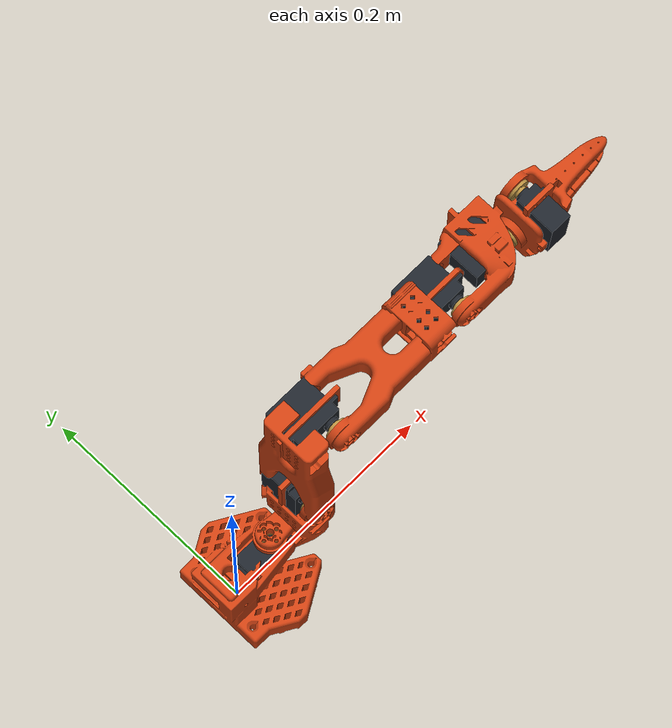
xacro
<?xml version="1.0"?>
<robot xmlns:xacro="http://www.ros.org/wiki/xacro" name="so101_mg996r_follower_r3">
  <material name="printed">
    <color rgba=".8 .25 .07 1" />
  </material>
  <material name="servo">
    <color rgba=".12 .14 .17 1" />
  </material>
  <material name="horn">
    <color rgba=".72 .56 .25 1" />
  </material>
  <link name="base_link">
    <visual name="follower_sts3215_03a_v1_2">
      <origin xyz="0.0263353 -8.97656999879322e-09 0.0437" rpy="-8.31586478561588e-44 0 -6.16297582203915e-33" />
      <geometry>
        <mesh filename="package://so101_description/meshes/visual/MG996R_Nominal_R3.stl" />
      </geometry>
      <material name="servo" />
    </visual>
    <collision name="follower_sts3215_03a_v1_2_case">
      <origin xyz="0.0283853 -8.97656999879322e-09 0.0337" rpy="-8.31586478561588e-44 0 -6.16297582203915e-33" />
      <geometry>
        <box size="0.0409 0.02 0.037" />
      </geometry>
    </collision>
    <collision name="follower_sts3215_03a_v1_2_tabs">
      <origin xyz="0.0283853 -8.97656999879322e-09 0.0433" rpy="-8.31586478561588e-44 0 -6.16297582203915e-33" />
      <geometry>
        <box size="0.054 0.02 0.0026" />
      </geometry>
    </collision>
    <collision name="follower_sts3215_03a_v1_2_boss">
      <origin xyz="0.0388353 -8.97656999879322e-09 0.0537" rpy="-8.31586478561588e-44 0 -6.16297582203915e-33" />
      <geometry>
        <cylinder radius="0.006500000000000001" length="0.003" />
      </geometry>
    </collision>
    <collision name="follower_sts3215_03a_v1_2_shaft">
      <origin xyz="0.0388353 -8.97656999879322e-09 0.05505" rpy="-8.31586478561588e-44 0 -6.16297582203915e-33" />
      <geometry>
        <cylinder radius="0.003" length="0.0057" />
      </geometry>
    </collision>
    <visual name="follower_Base_MG996R_R3">
      <origin xyz="-0.00636471 -8.97657e-09 -0.0024" rpy="1.5707963267949 6.74682532064708e-12 1.5707963267949" />
      <geometry>
        <mesh filename="package://so101_description/meshes/visual/Base_MG996R_R3.stl" />
      </geometry>
      <material name="printed" />
    </visual>
    <collision name="follower_Base_MG996R_R3_body0">
      <origin xyz="-0.00636471 -8.97657e-09 -0.0024" rpy="1.5707963267949 6.74682532064708e-12 1.5707963267949" />
      <geometry>
        <mesh filename="package://so101_description/meshes/collision/Base_MG996R_R3_body0.stl" />
      </geometry>
    </collision>
  </link>
  <link name="shoulder_link">
    <visual name="follower_sts3215_03a_v1_4">
      <origin xyz="-0.0303992 0.000422241000000002 -0.0417" rpy="1.5707963267949 1.5707963267949 0" />
      <geometry>
        <mesh filename="package://so101_description/meshes/visual/MG996R_Nominal_R3.stl" />
      </geometry>
      <material name="servo" />
    </visual>
    <collision name="follower_sts3215_03a_v1_4_case">
      <origin xyz="-0.0303992 0.010422241 -0.04375" rpy="1.5707963267949 1.5707963267949 0" />
      <geometry>
        <box size="0.0409 0.02 0.037" />
      </geometry>
    </collision>
    <collision name="follower_sts3215_03a_v1_4_tabs">
      <origin xyz="-0.0303992 0.000822241000000002 -0.04375" rpy="1.5707963267949 1.5707963267949 0" />
      <geometry>
        <box size="0.054 0.02 0.0026" />
      </geometry>
    </collision>
    <collision name="follower_sts3215_03a_v1_4_boss">
      <origin xyz="-0.0303992 -0.009577759 -0.0542" rpy="1.5707963267949 1.5707963267949 0" />
      <geometry>
        <cylinder radius="0.006500000000000001" length="0.003" />
      </geometry>
    </collision>
    <collision name="follower_sts3215_03a_v1_4_shaft">
      <origin xyz="-0.0303992 -0.010927759 -0.0542" rpy="1.5707963267949 1.5707963267949 0" />
      <geometry>
        <cylinder radius="0.003" length="0.0057" />
      </geometry>
    </collision>
    <visual name="follower_Shoulder_MG996R_R3">
      <origin xyz="0.0122008 2.22413e-05 0.0464" rpy="-1.5707963267949 0 0" />
      <geometry>
        <mesh filename="package://so101_description/meshes/visual/Shoulder_MG996R_R3.stl" />
      </geometry>
      <material name="printed" />
    </visual>
    <collision name="follower_Shoulder_MG996R_R3_body0">
      <origin xyz="0.0122008 2.22413e-05 0.0464" rpy="-1.5707963267949 0 0" />
      <geometry>
        <mesh filename="package://so101_description/meshes/collision/Shoulder_MG996R_R3_body0.stl" />
      </geometry>
    </collision>
    <visual name="follower_metal_horn_0">
      <origin xyz="0.0125 1.39964063017479e-18 0.0187" rpy="3.14159265358979 0 3.14159265358979" />
      <geometry>
        <mesh filename="package://so101_description/meshes/visual/Metal_Horn_D20_PCD14_R3.stl" />
      </geometry>
      <material name="horn" />
    </visual>
    <collision name="follower_metal_horn_0_body0">
      <origin xyz="0.0125 1.39964063017479e-18 0.0187" rpy="3.14159265358979 0 3.14159265358979" />
      <geometry>
        <mesh filename="package://so101_description/meshes/collision/Metal_Horn_D20_PCD14_R3_body0.stl" />
      </geometry>
    </collision>
  </link>
  <link name="upper_arm_link">
    <visual name="follower_sts3215_03a_v1_7">
      <origin xyz="-0.11257 -0.0155 0.0187" rpy="3.14159265358979 0 -1.5707963267949" />
      <geometry>
        <mesh filename="package://so101_description/meshes/visual/MG996R_Nominal_R3.stl" />
      </geometry>
      <material name="servo" />
    </visual>
    <collision name="follower_sts3215_03a_v1_7_case">
      <origin xyz="-0.11257 -0.01755 0.0287" rpy="3.14159265358979 0 -1.5707963267949" />
      <geometry>
        <box size="0.0409 0.02 0.037" />
      </geometry>
    </collision>
    <collision name="follower_sts3215_03a_v1_7_tabs">
      <origin xyz="-0.11257 -0.01755 0.0191" rpy="3.14159265358979 0 -1.5707963267949" />
      <geometry>
        <box size="0.054 0.02 0.0026" />
      </geometry>
    </collision>
    <collision name="follower_sts3215_03a_v1_7_boss">
      <origin xyz="-0.11257 -0.028 0.00870000000000001" rpy="3.14159265358979 0 -1.5707963267949" />
      <geometry>
        <cylinder radius="0.006500000000000001" length="0.003" />
      </geometry>
    </collision>
    <collision name="follower_sts3215_03a_v1_7_shaft">
      <origin xyz="-0.11257 -0.028 0.00735000000000001" rpy="3.14159265358979 0 -1.5707963267949" />
      <geometry>
        <cylinder radius="0.003" length="0.0057" />
      </geometry>
    </collision>
    <visual name="follower_Upper_arm_MG996R_R3">
      <origin xyz="-0.065085 0.012 0.0182" rpy="3.14159265358979 0 0" />
      <geometry>
        <mesh filename="package://so101_description/meshes/visual/Upper_arm_MG996R_R3.stl" />
      </geometry>
      <material name="printed" />
    </visual>
    <collision name="follower_Upper_arm_MG996R_R3_body0">
      <origin xyz="-0.065085 0.012 0.0182" rpy="3.14159265358979 0 0" />
      <geometry>
        <mesh filename="package://so101_description/meshes/collision/Upper_arm_MG996R_R3_body0.stl" />
      </geometry>
    </collision>
    <visual name="follower_metal_horn_1">
      <origin xyz="0.0125 2.8421709430404e-17 0.018700041" rpy="3.14159265358979 4.44089209850063e-16 3.14159265358979" />
      <geometry>
        <mesh filename="package://so101_description/meshes/visual/Metal_Horn_D20_PCD14_R3.stl" />
      </geometry>
      <material name="horn" />
    </visual>
    <collision name="follower_metal_horn_1_body0">
      <origin xyz="0.0125 2.8421709430404e-17 0.018700041" rpy="3.14159265358979 4.44089209850063e-16 3.14159265358979" />
      <geometry>
        <mesh filename="package://so101_description/meshes/collision/Metal_Horn_D20_PCD14_R3_body0.stl" />
      </geometry>
    </collision>
  </link>
  <link name="lower_arm_link">
    <visual name="follower_sts3215_03a_v1_11">
      <origin xyz="-0.1224 0.00519999999999996 0.0187" rpy="-3.14159265358979 0 -3.14159265358979" />
      <geometry>
        <mesh filename="package://so101_description/meshes/visual/MG996R_Nominal_R3.stl" />
      </geometry>
      <material name="servo" />
    </visual>
    <collision name="follower_sts3215_03a_v1_11_case">
      <origin xyz="-0.12445 0.00519999999999996 0.0287" rpy="-3.14159265358979 0 -3.14159265358979" />
      <geometry>
        <box size="0.0409 0.02 0.037" />
      </geometry>
    </collision>
    <collision name="follower_sts3215_03a_v1_11_tabs">
      <origin xyz="-0.12445 0.00519999999999996 0.0191" rpy="-3.14159265358979 0 -3.14159265358979" />
      <geometry>
        <box size="0.054 0.02 0.0026" />
      </geometry>
    </collision>
    <collision name="follower_sts3215_03a_v1_11_boss">
      <origin xyz="-0.1349 0.00519999999999996 0.0087" rpy="-3.14159265358979 0 -3.14159265358979" />
      <geometry>
        <cylinder radius="0.006500000000000001" length="0.003" />
      </geometry>
    </collision>
    <collision name="follower_sts3215_03a_v1_11_shaft">
      <origin xyz="-0.1349 0.00519999999999996 0.00735" rpy="-3.14159265358979 0 -3.14159265358979" />
      <geometry>
        <cylinder radius="0.003" length="0.0057" />
      </geometry>
    </collision>
    <visual name="follower_Forearm_MG996R_R3">
      <origin xyz="-0.0648499 -0.032 0.0182" rpy="3.14159265358979 0 0" />
      <geometry>
        <mesh filename="package://so101_description/meshes/visual/Forearm_MG996R_R3.stl" />
      </geometry>
      <material name="printed" />
    </visual>
    <collision name="follower_Forearm_MG996R_R3_body0">
      <origin xyz="-0.0648499 -0.032 0.0182" rpy="3.14159265358979 0 0" />
      <geometry>
        <mesh filename="package://so101_description/meshes/collision/Forearm_MG996R_R3_body0.stl" />
      </geometry>
    </collision>
    <collision name="follower_Forearm_MG996R_R3_body1">
      <origin xyz="-0.0648499 -0.032 0.0182" rpy="3.14159265358979 0 0" />
      <geometry>
        <mesh filename="package://so101_description/meshes/collision/Forearm_MG996R_R3_body1.stl" />
      </geometry>
    </collision>
    <collision name="follower_Forearm_MG996R_R3_body2">
      <origin xyz="-0.0648499 -0.032 0.0182" rpy="3.14159265358979 0 0" />
      <geometry>
        <mesh filename="package://so101_description/meshes/collision/Forearm_MG996R_R3_body2.stl" />
      </geometry>
    </collision>
    <visual name="follower_metal_horn_2">
      <origin xyz="0.0125 0 0.0186999999999998" rpy="-3.14159265358979 0 -3.14159265358979" />
      <geometry>
        <mesh filename="package://so101_description/meshes/visual/Metal_Horn_D20_PCD14_R3.stl" />
      </geometry>
      <material name="horn" />
    </visual>
    <collision name="follower_metal_horn_2_body0">
      <origin xyz="0.0125 0 0.0186999999999998" rpy="-3.14159265358979 0 -3.14159265358979" />
      <geometry>
        <mesh filename="package://so101_description/meshes/collision/Metal_Horn_D20_PCD14_R3_body0.stl" />
      </geometry>
    </collision>
  </link>
  <link name="wrist_link">
    <visual name="follower_sts3215_03a_no_horn_v1_12">
      <origin xyz="8.5265128291212e-17 -0.0504 0.0306" rpy="1.5707963267949 1.5707963267949 0" />
      <geometry>
        <mesh filename="package://so101_description/meshes/visual/MG996R_Nominal_R3.stl" />
      </geometry>
      <material name="servo" />
    </visual>
    <collision name="follower_sts3215_03a_no_horn_v1_12_case">
      <origin xyz="8.57203197313083e-17 -0.0404 0.02855" rpy="1.5707963267949 1.5707963267949 0" />
      <geometry>
        <box size="0.0409 0.02 0.037" />
      </geometry>
    </collision>
    <collision name="follower_sts3215_03a_no_horn_v1_12_tabs">
      <origin xyz="8.57203197313083e-17 -0.05 0.02855" rpy="1.5707963267949 1.5707963267949 0" />
      <geometry>
        <box size="0.054 0.02 0.0026" />
      </geometry>
    </collision>
    <collision name="follower_sts3215_03a_no_horn_v1_12_boss">
      <origin xyz="8.80406858527749e-17 -0.0604 0.0181" rpy="1.5707963267949 1.5707963267949 0" />
      <geometry>
        <cylinder radius="0.006500000000000001" length="0.003" />
      </geometry>
    </collision>
    <collision name="follower_sts3215_03a_no_horn_v1_12_shaft">
      <origin xyz="8.80406858527749e-17 -0.06175 0.0181" rpy="1.5707963267949 1.5707963267949 0" />
      <geometry>
        <cylinder radius="0.003" length="0.0057" />
      </geometry>
    </collision>
    <visual name="follower_Wrist_pitch_roll_MG996R_R3">
      <origin xyz="0 -0.028 0.0181" rpy="-1.5707963267949 -1.5707963267949 0" />
      <geometry>
        <mesh filename="package://so101_description/meshes/visual/Wrist_pitch_roll_MG996R_R3.stl" />
      </geometry>
      <material name="printed" />
    </visual>
    <collision name="follower_Wrist_pitch_roll_MG996R_R3_body0">
      <origin xyz="0 -0.028 0.0181" rpy="-1.5707963267949 -1.5707963267949 0" />
      <geometry>
        <mesh filename="package://so101_description/meshes/collision/Wrist_pitch_roll_MG996R_R3_body0.stl" />
      </geometry>
    </collision>
    <visual name="follower_metal_horn_3">
      <origin xyz="0 0.0125 0.0187" rpy="3.14159265358979 0 -1.5707963267949" />
      <geometry>
        <mesh filename="package://so101_description/meshes/visual/Metal_Horn_D20_PCD14_R3.stl" />
      </geometry>
      <material name="horn" />
    </visual>
    <collision name="follower_metal_horn_3_body0">
      <origin xyz="0 0.0125 0.0187" rpy="3.14159265358979 0 -1.5707963267949" />
      <geometry>
        <mesh filename="package://so101_description/meshes/collision/Metal_Horn_D20_PCD14_R3_body0.stl" />
      </geometry>
    </collision>
  </link>
  <link name="gripper_link">
    <visual name="follower_sts3215_03a_v1_14">
      <origin xyz="0.00769999999999999 0.000100000000000001 -0.0234" rpy="-1.5707963267949 0 0" />
      <geometry>
        <mesh filename="package://so101_description/meshes/visual/MG996R_Nominal_R3.stl" />
      </geometry>
      <material name="servo" />
    </visual>
    <collision name="follower_sts3215_03a_v1_14_case">
      <origin xyz="0.00974999999999999 -0.0099 -0.0234" rpy="-1.5707963267949 0 0" />
      <geometry>
        <box size="0.0409 0.02 0.037" />
      </geometry>
    </collision>
    <collision name="follower_sts3215_03a_v1_14_tabs">
      <origin xyz="0.00974999999999999 -0.000299999999999999 -0.0234" rpy="-1.5707963267949 0 0" />
      <geometry>
        <box size="0.054 0.02 0.0026" />
      </geometry>
    </collision>
    <collision name="follower_sts3215_03a_v1_14_boss">
      <origin xyz="0.0202 0.0101 -0.0234" rpy="-1.5707963267949 0 0" />
      <geometry>
        <cylinder radius="0.006500000000000001" length="0.003" />
      </geometry>
    </collision>
    <collision name="follower_sts3215_03a_v1_14_shaft">
      <origin xyz="0.0202 0.01145 -0.0234" rpy="-1.5707963267949 0 0" />
      <geometry>
        <cylinder radius="0.003" length="0.0057" />
      </geometry>
    </collision>
    <visual name="follower_Gripper_body_MG996R_R3">
      <origin xyz="8.5265128291212e-17 -0.000218213999999998 0.000949705999999992" rpy="-3.14159265358979 0 0" />
      <geometry>
        <mesh filename="package://so101_description/meshes/visual/Gripper_body_MG996R_R3.stl" />
      </geometry>
      <material name="printed" />
    </visual>
    <collision name="follower_Gripper_body_MG996R_R3_body0">
      <origin xyz="8.5265128291212e-17 -0.000218213999999998 0.000949705999999992" rpy="-3.14159265358979 0 0" />
      <geometry>
        <mesh filename="package://so101_description/meshes/collision/Gripper_body_MG996R_R3_body0.stl" />
      </geometry>
    </collision>
    <visual name="follower_metal_horn_4">
      <origin xyz="-0.000608253454377717 0.0124851923387362 0.0187" rpy="3.14159265358979 8.88178419700125e-16 -1.52211682680496" />
      <geometry>
        <mesh filename="package://so101_description/meshes/visual/Metal_Horn_D20_PCD14_R3.stl" />
      </geometry>
      <material name="horn" />
    </visual>
    <collision name="follower_metal_horn_4_body0">
      <origin xyz="-0.000608253454377717 0.0124851923387362 0.0187" rpy="3.14159265358979 8.88178419700125e-16 -1.52211682680496" />
      <geometry>
        <mesh filename="package://so101_description/meshes/collision/Metal_Horn_D20_PCD14_R3_body0.stl" />
      </geometry>
    </collision>
  </link>
  <link name="moving_jaw_so101_v1_link">
    <visual name="follower_Moving_jaw_MG996R_R3">
      <origin xyz="0 -5.6843418860808e-17 0.0189" rpy="-2.23217743329499e-33 0 -4.31455794280866e-33" />
      <geometry>
        <mesh filename="package://so101_description/meshes/visual/Moving_jaw_MG996R_R3.stl" />
      </geometry>
      <material name="printed" />
    </visual>
    <collision name="follower_Moving_jaw_MG996R_R3_body0">
      <origin xyz="0 -5.6843418860808e-17 0.0189" rpy="-2.23217743329499e-33 0 -4.31455794280866e-33" />
      <geometry>
        <mesh filename="package://so101_description/meshes/collision/Moving_jaw_MG996R_R3_body0.stl" />
      </geometry>
    </collision>
    <visual name="follower_metal_horn_5">
      <origin xyz="-0.0124999999999999 0 0.0187" rpy="-3.14159265358979 0 0" />
      <geometry>
        <mesh filename="package://so101_description/meshes/visual/Metal_Horn_D20_PCD14_R3.stl" />
      </geometry>
      <material name="horn" />
    </visual>
    <collision name="follower_metal_horn_5_body0">
      <origin xyz="-0.0124999999999999 0 0.0187" rpy="-3.14159265358979 0 0" />
      <geometry>
        <mesh filename="package://so101_description/meshes/collision/Metal_Horn_D20_PCD14_R3_body0.stl" />
      </geometry>
    </collision>
  </link>
  <joint name="shoulder_pan" type="revolute">
    <parent link="base_link" />
    <child link="shoulder_link" />
    <origin xyz="0.0388353 -8.97657000000347e-09 0.0624" rpy="-3.14159265358305 0 -3.14159265358979" />
    <axis xyz="0 0 1" />
    <limit lower="-1.4835298641951802" upper="1.4835298641951802" effort="0" velocity="0.17453292519943295" />
  </joint>
  <joint name="shoulder_lift" type="revolute">
    <parent link="shoulder_link" />
    <child link="upper_arm_link" />
    <origin xyz="-0.0303992 -0.0182778 -0.0542" rpy="-1.5707963267949 -1.5707963267949 0" />
    <axis xyz="0 0 1" />
    <limit lower="-1.3962634015954636" upper="1.3962634015954636" effort="0" velocity="0.17453292519943295" />
  </joint>
  <joint name="elbow_flex" type="revolute">
    <parent link="upper_arm_link" />
    <child link="lower_arm_link" />
    <origin xyz="-0.11257 -0.028 3.5527136788005e-18" rpy="2.22044604925031e-16 0 1.5707963267949" />
    <axis xyz="0 0 1" />
    <limit lower="-1.3962634015954636" upper="1.3962634015954636" effort="0" velocity="0.17453292519943295" />
  </joint>
  <joint name="wrist_flex" type="revolute">
    <parent link="lower_arm_link" />
    <child link="wrist_link" />
    <origin xyz="-0.1349 0.00519999999999999 -1.06581410364015e-17" rpy="2.22044604925031e-16 0 -1.5707963267949" />
    <axis xyz="0 0 1" />
    <limit lower="-1.3962634015954636" upper="1.3962634015954636" effort="0" velocity="0.17453292519943295" />
  </joint>
  <joint name="wrist_roll" type="revolute">
    <parent link="wrist_link" />
    <child link="gripper_link" />
    <origin xyz="1.13686837721616e-16 -0.0691 0.0181" rpy="1.5707963267949 0.0486794999899367 3.14159265358979" />
    <axis xyz="0 0 1" />
    <limit lower="-1.4835298641951802" upper="1.4835298641951802" effort="0" velocity="0.17453292519943295" />
  </joint>
  <joint name="gripper" type="revolute">
    <parent link="gripper_link" />
    <child link="moving_jaw_so101_v1_link" />
    <origin xyz="0.0202 0.0188 -0.0234" rpy="1.5707963267949 0 0" />
    <axis xyz="0 0 1" />
    <limit lower="0.0" upper="1.2217304763960306" effort="0" velocity="0.17453292519943295" />
  </joint>
  <link name="gripper_frame_link" />
  <joint name="gripper_tool_fixed" type="fixed">
    <parent link="gripper_link" />
    <child link="gripper_frame_link" />
    <origin xyz="-0.0079 -0.000218121 -0.0981274" rpy="3.14159265358979 0 3.14159265358979" />
  </joint>
</robot>
